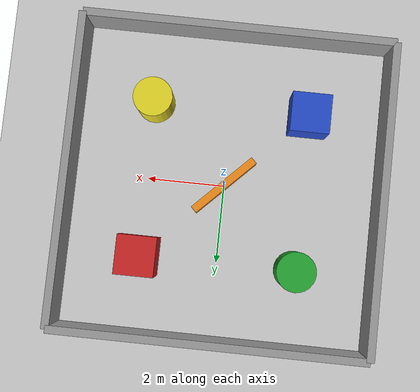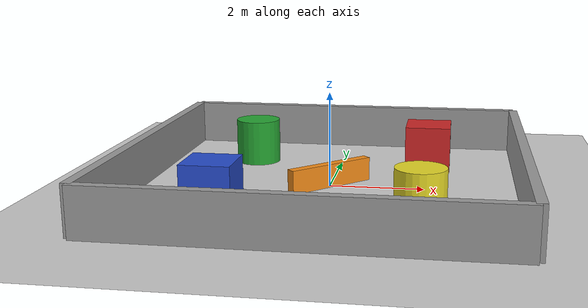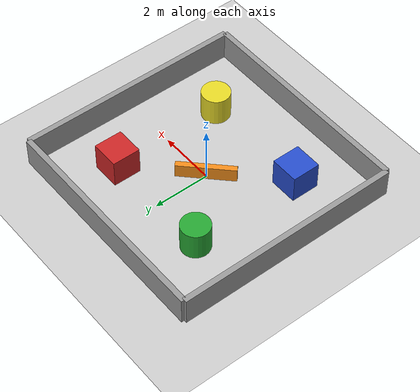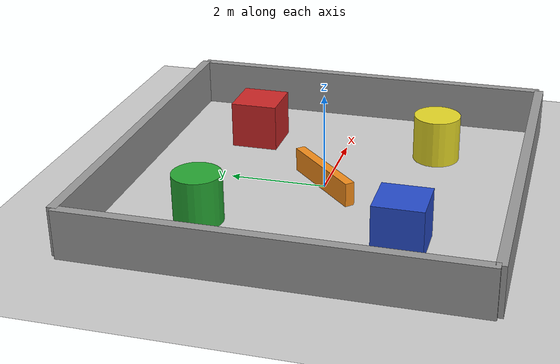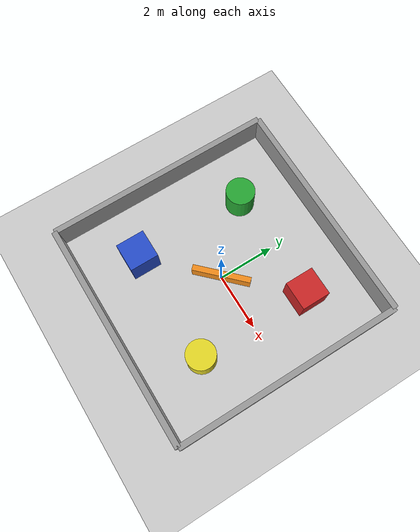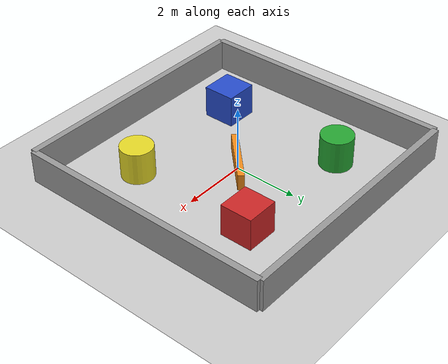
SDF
<?xml version="1.0" ?>
<sdf version="1.6">
  <world name="obstacle_world">
    <!-- A global light source -->
    <light type="directional" name="sun">
      <cast_shadows>true</cast_shadows>
      <pose>0 0 10 0 0 0</pose>
      <diffuse>0.8 0.8 0.8 1</diffuse>
      <specular>0.2 0.2 0.2 1</specular>
      <direction>-0.5 0.1 -0.9</direction>
    </light>

    <!-- A ground plane -->
    <model name="ground_plane">
      <static>true</static>
      <link name="link">
        <collision name="collision">
          <geometry>
            <plane>
              <normal>0 0 1</normal>
              <size>100 100</size>
            </plane>
          </geometry>
          <surface>
            <friction>
              <ode>
                <mu>100</mu>
                <mu2>50</mu2>
              </ode>
            </friction>
          </surface>
        </collision>
        <visual name="visual">
          <geometry>
            <plane>
              <normal>0 0 1</normal>
              <size>100 100</size>
            </plane>
          </geometry>
          <material>
            <ambient>0.8 0.8 0.8 1</ambient>
            <diffuse>0.8 0.8 0.8 1</diffuse>
            <specular>0.8 0.8 0.8 1</specular>
          </material>
        </visual>
      </link>
    </model>

    <!-- Physics -->
    <physics type="ode">
      <real_time_update_rate>1000.0</real_time_update_rate>
      <max_step_size>0.001</max_step_size>
      <real_time_factor>1</real_time_factor>
      <ode>
        <solver>
          <type>quick</type>
          <iters>150</iters>
          <precon_iters>0</precon_iters>
          <sor>1.400000</sor>
          <use_dynamic_moi_rescaling>1</use_dynamic_moi_rescaling>
        </solver>
        <constraints>
          <cfm>0.00001</cfm>
          <erp>0.2</erp>
          <contact_max_correcting_vel>2000.000000</contact_max_correcting_vel>
          <contact_surface_layer>0.01000</contact_surface_layer>
        </constraints>
      </ode>
    </physics>

    <!-- A box obstacle -->
    <model name="box1">
      <static>true</static>
      <pose>2 2 0.5 0 0 0</pose>
      <link name="link">
        <collision name="collision">
          <geometry>
            <box>
              <size>1 1 1</size>
            </box>
          </geometry>
        </collision>
        <visual name="visual">
          <geometry>
            <box>
              <size>1 1 1</size>
            </box>
          </geometry>
          <material>
            <script>
              <uri>file://media/materials/scripts/gazebo.material</uri>
              <name>Gazebo/Red</name>
            </script>
          </material>
        </visual>
      </link>
    </model>

    <!-- Another box obstacle -->
    <model name="box2">
      <static>true</static>
      <pose>-2 -2 0.5 0 0 0</pose>
      <link name="link">
        <collision name="collision">
          <geometry>
            <box>
              <size>1 1 1</size>
            </box>
          </geometry>
        </collision>
        <visual name="visual">
          <geometry>
            <box>
              <size>1 1 1</size>
            </box>
          </geometry>
          <material>
            <script>
              <uri>file://media/materials/scripts/gazebo.material</uri>
              <name>Gazebo/Blue</name>
            </script>
          </material>
        </visual>
      </link>
    </model>

    <!-- A cylinder obstacle -->
    <model name="cylinder1">
      <static>true</static>
      <pose>-2 2 0.5 0 0 0</pose>
      <link name="link">
        <collision name="collision">
          <geometry>
            <cylinder>
              <radius>0.5</radius>
              <length>1</length>
            </cylinder>
          </geometry>
        </collision>
        <visual name="visual">
          <geometry>
            <cylinder>
              <radius>0.5</radius>
              <length>1</length>
            </cylinder>
          </geometry>
          <material>
            <script>
              <uri>file://media/materials/scripts/gazebo.material</uri>
              <name>Gazebo/Green</name>
            </script>
          </material>
        </visual>
      </link>
    </model>

    <!-- Another cylinder obstacle -->
    <model name="cylinder2">
      <static>true</static>
      <pose>2 -2 0.5 0 0 0</pose>
      <link name="link">
        <collision name="collision">
          <geometry>
            <cylinder>
              <radius>0.5</radius>
              <length>1</length>
            </cylinder>
          </geometry>
        </collision>
        <visual name="visual">
          <geometry>
            <cylinder>
              <radius>0.5</radius>
              <length>1</length>
            </cylinder>
          </geometry>
          <material>
            <script>
              <uri>file://media/materials/scripts/gazebo.material</uri>
              <name>Gazebo/Yellow</name>
            </script>
          </material>
        </visual>
      </link>
    </model>

    <!-- A wall -->
    <model name="wall1">
      <static>true</static>
      <pose>0 4 0.5 0 0 0</pose>
      <link name="link">
        <collision name="collision">
          <geometry>
            <box>
              <size>8 0.2 1</size>
            </box>
          </geometry>
        </collision>
        <visual name="visual">
          <geometry>
            <box>
              <size>8 0.2 1</size>
            </box>
          </geometry>
          <material>
            <script>
              <uri>file://media/materials/scripts/gazebo.material</uri>
              <name>Gazebo/Grey</name>
            </script>
          </material>
        </visual>
      </link>
    </model>

    <!-- Another wall -->
    <model name="wall2">
      <static>true</static>
      <pose>0 -4 0.5 0 0 0</pose>
      <link name="link">
        <collision name="collision">
          <geometry>
            <box>
              <size>8 0.2 1</size>
            </box>
          </geometry>
        </collision>
        <visual name="visual">
          <geometry>
            <box>
              <size>8 0.2 1</size>
            </box>
          </geometry>
          <material>
            <script>
              <uri>file://media/materials/scripts/gazebo.material</uri>
              <name>Gazebo/Grey</name>
            </script>
          </material>
        </visual>
      </link>
    </model>

    <!-- A third wall -->
    <model name="wall3">
      <static>true</static>
      <pose>4 0 0.5 0 0 1.5708</pose>
      <link name="link">
        <collision name="collision">
          <geometry>
            <box>
              <size>8 0.2 1</size>
            </box>
          </geometry>
        </collision>
        <visual name="visual">
          <geometry>
            <box>
              <size>8 0.2 1</size>
            </box>
          </geometry>
          <material>
            <script>
              <uri>file://media/materials/scripts/gazebo.material</uri>
              <name>Gazebo/Grey</name>
            </script>
          </material>
        </visual>
      </link>
    </model>

    <!-- A fourth wall -->
    <model name="wall4">
      <static>true</static>
      <pose>-4 0 0.5 0 0 1.5708</pose>
      <link name="link">
        <collision name="collision">
          <geometry>
            <box>
              <size>8 0.2 1</size>
            </box>
          </geometry>
        </collision>
        <visual name="visual">
          <geometry>
            <box>
              <size>8 0.2 1</size>
            </box>
          </geometry>
          <material>
            <script>
              <uri>file://media/materials/scripts/gazebo.material</uri>
              <name>Gazebo/Grey</name>
            </script>
          </material>
        </visual>
      </link>
    </model>

    <!-- A complex obstacle -->
    <model name="complex_obstacle">
      <static>true</static>
      <pose>0 0 0.25 0 0 0.7854</pose>
      <link name="link">
        <collision name="collision">
          <geometry>
            <box>
              <size>2 0.2 0.5</size>
            </box>
          </geometry>
        </collision>
        <visual name="visual">
          <geometry>
            <box>
              <size>2 0.2 0.5</size>
            </box>
          </geometry>
          <material>
            <script>
              <uri>file://media/materials/scripts/gazebo.material</uri>
              <name>Gazebo/Orange</name>
            </script>
          </material>
        </visual>
      </link>
    </model>

  </world>
</sdf>
